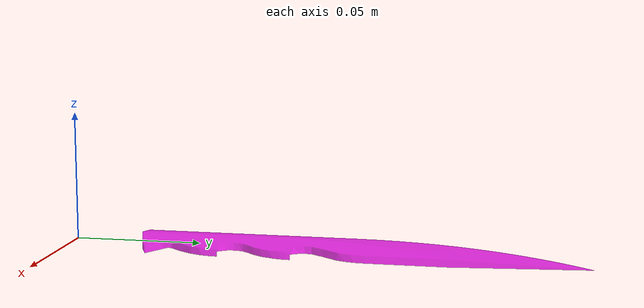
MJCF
<mujoco model="bottom_watertight_tiny">
  <default>
    <default group="2" type="mesh" contype="0" conaffinity="0">
      <geom group="2" type="mesh" contype="0" conaffinity="0"/>
    </default>
    <default group="3" type="mesh">
      <geom group="3" type="mesh"/>
    </default>
  </default>
  <asset>
    <mesh file="bottom_watertight_tiny.obj"/>
    <mesh file="bottom_watertight_tiny_collision_0.obj"/>
    <mesh file="bottom_watertight_tiny_collision_1.obj"/>
    <mesh file="bottom_watertight_tiny_collision_2.obj"/>
    <mesh file="bottom_watertight_tiny_collision_3.obj"/>
  </asset>
  <worldbody>
    <body name="bottom_watertight_tiny">
      <freejoint/>
      <geom mesh="bottom_watertight_tiny" group="2" type="mesh" rgba="1 0 1 0.8" contype="0" conaffinity="0"/>
      <geom mesh="bottom_watertight_tiny_collision_0" rgba="0.9260972098097174 0.18916342854542323 0.022360709495351738 1" group="3" type="mesh"/>
      <geom mesh="bottom_watertight_tiny_collision_1" rgba="0.5759336862588406 0.7555342468362388 0.09467687241666978 1" group="3" type="mesh"/>
      <geom mesh="bottom_watertight_tiny_collision_2" rgba="0.4910434208436002 0.1971546842838794 0.3004253026173117 1" group="3" type="mesh"/>
      <geom mesh="bottom_watertight_tiny_collision_3" rgba="0.003869515490081521 0.05882521931567519 0.10508533763175776 1" group="3" type="mesh"/>
    </body>
  </worldbody>
</mujoco>
